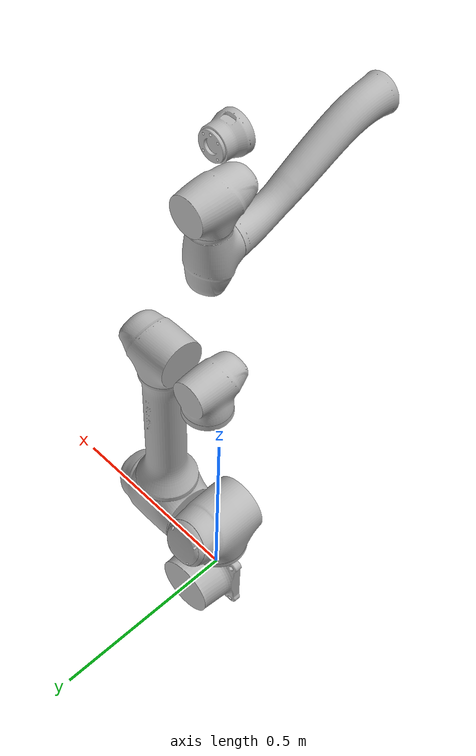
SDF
<sdf version='1.9'>
  <model name='a0912'>
    <joint name='world_fixed' type='fixed'>
      <pose relative_to='__model__'>0 0 0 0 0 0</pose>
      <parent>world</parent>
      <child>base_0</child>
    </joint>
    <link name='base_0'>
      <pose relative_to='world_fixed'>0 0 0 0 0 0</pose>
      <inertial>
        <pose>4e-06 -0.001016 0.08180999999999999 0 0 0</pose>
        <mass>3.6349999999999998</mass>
        <inertia>
          <ixx>0.022159999999999999</ixx>
          <ixy>5.8000999999999997e-06</ixy>
          <ixz>6.1940999999999997e-06</ixz>
          <iyy>0.024834999999999999</iyy>
          <iyz>-5.3034000000000001e-05</iyz>
          <izz>0.021062999999999998</izz>
        </inertia>
      </inertial>
      <collision name='base_0_collision'>
        <pose>0 0 0 0 0 0</pose>
        <geometry>
          <mesh>
            <scale>0.001 0.001 0.001</scale>
            <uri>model://robotic_arm/meshes/a0912_blue/A0912_0_0.dae</uri>
          </mesh>
        </geometry>
      </collision>
      <visual name='base_0_visual'>
        <pose>0 0 0 0 0 0</pose>
        <geometry>
          <mesh>
            <scale>0.001 0.001 0.001</scale>
            <uri>model://robotic_arm/meshes/a0912_blue/A0912_0_0.dae</uri>
          </mesh>
        </geometry>
      </visual>
    </link>
    <joint name='joint1' type='revolute'>
      <pose relative_to='base_0'>0 0 0.195 0 0 0</pose>
      <parent>base_0</parent>
      <child>link1</child>
      <axis>
        <xyz>0 0 1</xyz>
        <limit>
          <lower>-6.2831999999999999</lower>
          <upper>6.2831999999999999</upper>
          <effort>411</effort>
          <velocity>3.1415999999999999</velocity>
        </limit>
        <dynamics>
          <damping>60</damping>
          <friction>4</friction>
          <spring_reference>0</spring_reference>
          <spring_stiffness>0</spring_stiffness>
        </dynamics>
      </axis>
    </joint>
    <link name='link1'>
      <pose relative_to='joint1'>0 0 0 0 0 0</pose>
      <inertial>
        <pose>4.4e-05 0.029982 -0.01112 0 0 0</pose>
        <mass>7.8630000000000004</mass>
        <inertia>
          <ixx>0.045838999999999998</ixx>
          <ixy>1.2758999999999999e-05</ixy>
          <ixz>-3.6168000000000003e-05</ixz>
          <iyy>0.032912999999999998</iyy>
          <iyz>-0.0029965</iyz>
          <izz>0.044399000000000001</izz>
        </inertia>
      </inertial>
      <collision name='link1_collision'>
        <pose>0 0 0 0 0 0</pose>
        <geometry>
          <cylinder>
            <length>0.20000000000000001</length>
            <radius>0.080000000000000002</radius>
          </cylinder>
        </geometry>
      </collision>
      <visual name='link1_visual'>
        <pose>0 0 0 0 0 0</pose>
        <geometry>
          <mesh>
            <scale>0.001 0.001 0.001</scale>
            <uri>model://robotic_arm/meshes/a0912_blue/A0912_1_0.dae</uri>
          </mesh>
        </geometry>
      </visual>
      <visual name='link1_visual_1'>
        <pose>0 0 0 0 0 0</pose>
        <geometry>
          <mesh>
            <scale>0.001 0.001 0.001</scale>
            <uri>model://robotic_arm/meshes/a0912_blue/A0912_1_1.dae</uri>
          </mesh>
        </geometry>
      </visual>
      <visual name='link1_visual_2'>
        <pose>0 0 0 0 0 0</pose>
        <geometry>
          <mesh>
            <scale>0.001 0.001 0.001</scale>
            <uri>model://robotic_arm/meshes/a0912_blue/A0912_1_2.dae</uri>
          </mesh>
        </geometry>
      </visual>
    </link>
    <joint name='joint2' type='revolute'>
      <pose relative_to='link1'>0 0.039 0 3.141592653589793 -1.57059265358981 1.570592653589896</pose>
      <parent>link1</parent>
      <child>link2</child>
      <axis>
        <xyz>0 0 1</xyz>
        <limit>
          <lower>-6.2831999999999999</lower>
          <upper>6.2831999999999999</upper>
          <effort>411</effort>
          <velocity>3.1415999999999999</velocity>
        </limit>
        <dynamics>
          <damping>50</damping>
          <friction>3</friction>
          <spring_reference>0</spring_reference>
          <spring_stiffness>0</spring_stiffness>
        </dynamics>
      </axis>
    </joint>
    <link name='link2'>
      <pose relative_to='joint2'>0 0 0 0 0 0</pose>
      <inertial>
        <pose>0.19748 0.001426 0.13191 0 0 0</pose>
        <mass>10.984999999999999</mass>
        <inertia>
          <ixx>0.04446</ixx>
          <ixy>-0.0049947999999999998</ixy>
          <ixz>-0.010992</ixz>
          <iyy>0.67642000000000002</iyy>
          <iyz>-2.8483000000000002e-05</iyz>
          <izz>0.67427999999999999</izz>
        </inertia>
      </inertial>
      <collision name='link2_collision'>
        <pose>0.3 0 0.1525 0 -1.570796326794897 0</pose>
        <geometry>
          <cylinder>
            <length>0.59999999999999998</length>
            <radius>0.080000000000000002</radius>
          </cylinder>
        </geometry>
      </collision>
      <visual name='link2_visual'>
        <pose>0 0 0 0 0 0</pose>
        <geometry>
          <mesh>
            <scale>0.001 0.001 0.001</scale>
            <uri>model://robotic_arm/meshes/a0912_blue/A0912_2_0.dae</uri>
          </mesh>
        </geometry>
      </visual>
      <visual name='link2_visual_1'>
        <pose>0 0 0 0 0 0</pose>
        <geometry>
          <mesh>
            <scale>0.001 0.001 0.001</scale>
            <uri>model://robotic_arm/meshes/a0912_blue/A0912_2_1.dae</uri>
          </mesh>
        </geometry>
      </visual>
      <visual name='link2_visual_2'>
        <pose>0 0 0 0 0 0</pose>
        <geometry>
          <mesh>
            <scale>0.001 0.001 0.001</scale>
            <uri>model://robotic_arm/meshes/a0912_blue/A0912_2_2.dae</uri>
          </mesh>
        </geometry>
      </visual>
    </link>
    <joint name='joint3' type='revolute'>
      <pose relative_to='link2'>0.5600000000000001 0 0 0 0 1.571</pose>
      <parent>link2</parent>
      <child>link3</child>
      <axis>
        <xyz>0 0 1</xyz>
        <limit>
          <lower>-2.7925</lower>
          <upper>2.7925</upper>
          <effort>194</effort>
          <velocity>3.1415999999999999</velocity>
        </limit>
        <dynamics>
          <damping>40</damping>
          <friction>2</friction>
          <spring_reference>0</spring_reference>
          <spring_stiffness>0</spring_stiffness>
        </dynamics>
      </axis>
    </joint>
    <link name='link3'>
      <pose relative_to='joint3'>0 0 0 0 0 0</pose>
      <inertial>
        <pose>8.500000000000001e-05 -0.002513 0.032058 0 0 0</pose>
        <mass>2.8809999999999998</mass>
        <inertia>
          <ixx>0.012756</ixx>
          <ixy>-5.4257000000000004e-06</ixy>
          <ixz>1.6402e-05</ixz>
          <iyy>0.011416000000000001</iyy>
          <iyz>-0.00019890000000000001</iyz>
          <izz>0.0080651999999999998</izz>
        </inertia>
      </inertial>
      <visual name='link3_visual'>
        <pose>0 0 0 0 0 0</pose>
        <geometry>
          <mesh>
            <scale>0.001 0.001 0.001</scale>
            <uri>model://robotic_arm/meshes/a0912_blue/A0912_3_0.dae</uri>
          </mesh>
        </geometry>
      </visual>
      <visual name='link3_visual_1'>
        <pose>0 0 0 0 0 0</pose>
        <geometry>
          <mesh>
            <scale>0.001 0.001 0.001</scale>
            <uri>model://robotic_arm/meshes/a0912_blue/A0912_3_1.dae</uri>
          </mesh>
        </geometry>
      </visual>
    </link>
    <joint name='joint4' type='revolute'>
      <pose relative_to='link3'>0 -0.516 0 1.571 0 0</pose>
      <parent>link3</parent>
      <child>link4</child>
      <axis>
        <xyz>0 0 1</xyz>
        <limit>
          <lower>-6.2831999999999999</lower>
          <upper>6.2831999999999999</upper>
          <effort>50</effort>
          <velocity>6.2831999999999999</velocity>
        </limit>
        <dynamics>
          <damping>20</damping>
          <friction>1</friction>
          <spring_reference>0</spring_reference>
          <spring_stiffness>0</spring_stiffness>
        </dynamics>
      </axis>
    </joint>
    <link name='link4'>
      <pose relative_to='joint4'>0 0 0 0 0 0</pose>
      <inertial>
        <pose>-9.6e-05 0.085314 -0.13975 0 0 0</pose>
        <mass>3.2730000000000001</mass>
        <inertia>
          <ixx>0.12246</ixx>
          <ixy>2.3904999999999999e-05</ixy>
          <ixz>2.5021999999999999e-05</ixz>
          <iyy>0.11307</iyy>
          <iyz>-0.027994999999999999</iyz>
          <izz>0.017186</izz>
        </inertia>
      </inertial>
      <collision name='link4_collision'>
        <pose>0 0.075 -0.2 -0.46 0 0</pose>
        <geometry>
          <cylinder>
            <length>0.40000000000000002</length>
            <radius>0.050000000000000003</radius>
          </cylinder>
        </geometry>
      </collision>
      <visual name='link4_visual'>
        <pose>0 0 0 0 0 0</pose>
        <geometry>
          <mesh>
            <scale>0.001 0.001 0.001</scale>
            <uri>model://robotic_arm/meshes/a0912_blue/A0912_4_0.dae</uri>
          </mesh>
        </geometry>
      </visual>
      <visual name='link4_visual_1'>
        <pose>0 0 0 0 0 0</pose>
        <geometry>
          <mesh>
            <scale>0.001 0.001 0.001</scale>
            <uri>model://robotic_arm/meshes/a0912_blue/A0912_4_1.dae</uri>
          </mesh>
        </geometry>
      </visual>
    </link>
    <joint name='joint5' type='revolute'>
      <pose relative_to='link4'>0 0 0 -1.571 0 0</pose>
      <parent>link4</parent>
      <child>link5</child>
      <axis>
        <xyz>0 0 1</xyz>
        <limit>
          <lower>-6.2831999999999999</lower>
          <upper>6.2831999999999999</upper>
          <effort>50</effort>
          <velocity>6.2831999999999999</velocity>
        </limit>
        <dynamics>
          <damping>10</damping>
          <friction>1</friction>
          <spring_reference>0</spring_reference>
          <spring_stiffness>0</spring_stiffness>
        </dynamics>
      </axis>
    </joint>
    <link name='link5'>
      <pose relative_to='joint5'>0 0 0 0 0 0</pose>
      <inertial>
        <pose>0.000109 -0.003286 0.01477 0 0 0</pose>
        <mass>2.141</mass>
        <inertia>
          <ixx>0.013145</ixx>
          <ixy>-4.7132e-06</ixy>
          <ixz>8.5804e-06</ixz>
          <iyy>0.0073071999999999998</iyy>
          <iyz>-5.999e-05</iyz>
          <izz>0.0090475999999999994</izz>
        </inertia>
      </inertial>
      <collision name='link5_collision'>
        <pose>0 0 0 1.571 0 0</pose>
        <geometry>
          <cylinder>
            <length>0.14999999999999999</length>
            <radius>0.059999999999999998</radius>
          </cylinder>
        </geometry>
      </collision>
      <visual name='link5_visual'>
        <pose>0 0 0 0 0 0</pose>
        <geometry>
          <mesh>
            <scale>0.001 0.001 0.001</scale>
            <uri>model://robotic_arm/meshes/a0912_blue/A0912_5_0.dae</uri>
          </mesh>
        </geometry>
      </visual>
      <visual name='link5_visual_1'>
        <pose>0 0 0 0 0 0</pose>
        <geometry>
          <mesh>
            <scale>0.001 0.001 0.001</scale>
            <uri>model://robotic_arm/meshes/a0912_blue/A0912_5_1.dae</uri>
          </mesh>
        </geometry>
      </visual>
    </link>
    <joint name='joint6' type='revolute'>
      <pose relative_to='link5'>0 -0.124 0 1.571 0 0</pose>
      <parent>link5</parent>
      <child>link6</child>
      <axis>
        <xyz>0 0 1</xyz>
        <limit>
          <lower>-6.2831999999999999</lower>
          <upper>6.2831999999999999</upper>
          <effort>50</effort>
          <velocity>6.2831999999999999</velocity>
        </limit>
        <dynamics>
          <damping>10</damping>
          <friction>1</friction>
          <spring_reference>0</spring_reference>
          <spring_stiffness>0</spring_stiffness>
        </dynamics>
      </axis>
    </joint>
    <link name='link6'>
      <pose relative_to='joint6'>0 0 0 0 0 0</pose>
      <inertial>
        <pose>-1.9e-05 -6e-06 -0.05227 0 0 0</pose>
        <mass>0.78400000000000003</mass>
        <inertia>
          <ixx>0.0067403000000000003</ixx>
          <ixy>5.2372999999999998e-06</ixy>
          <ixz>2.4957000000000001e-06</ixz>
          <iyy>0.0048015000000000002</iyy>
          <iyz>8.3670999999999999e-06</iyz>
          <izz>0.0059696000000000003</izz>
        </inertia>
      </inertial>
      <collision name='link6_collision'>
        <pose>0 0 0 0 0 0</pose>
        <geometry>
          <mesh>
            <scale>0.001 0.001 0.001</scale>
            <uri>model://robotic_arm/meshes/a0912_blue/A0912_6_0.dae</uri>
          </mesh>
        </geometry>
      </collision>
      <visual name='link6_visual'>
        <pose>0 0 0 0 0 0</pose>
        <geometry>
          <mesh>
            <scale>0.001 0.001 0.001</scale>
            <uri>model://robotic_arm/meshes/a0912_blue/A0912_6_0.dae</uri>
          </mesh>
        </geometry>
      </visual>
    </link>

    <plugin filename="gz-sim-joint-position-controller-system" name="gz::sim::systems::JointPositionController">
      <joint_name>joint1</joint_name>
      <topic>j1_pos</topic>
      <p_gain>1</p_gain>
      <i_gain>0.1</i_gain>
      <d_gain>0.01</d_gain>
      <i_max>1</i_max>
      <i_min>-1</i_min>
      <cmd_max>1000</cmd_max>
      <cmd_min>-1000</cmd_min>
    </plugin>

  </model>
</sdf>
